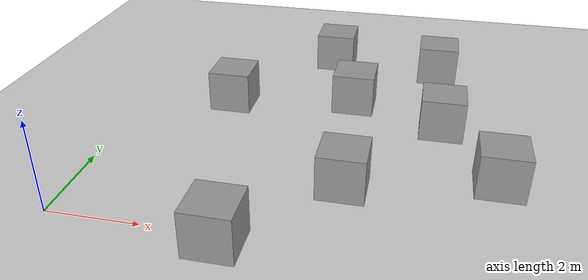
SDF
<sdf version="1.6">
 <world name="default">
  <light name="sun" type="directional">
   <pose>0 0 10 0 -0 0</pose>
   <diffuse>0.8 0.8 0.8 1</diffuse>
   <specular>0.2 0.2 0.2 1</specular>
   <attenuation>
    <range>1000</range>
    <constant>0.9</constant>
    <linear>0.01</linear>
    <quadratic>0.001</quadratic>
   </attenuation>
   <direction>-0.5 0.1 -0.9</direction>
  </light>
  <model name="ground_plane">
   <static>1</static>
   <link name="link">
    <collision name="collision">
     <geometry><plane><normal>0 0 1</normal><size>100 100</size></plane></geometry>
     <surface>
      <contact><collide_bitmask>65535</collide_bitmask></contact>
      <friction><ode><mu>100</mu><mu2>50</mu2></ode></friction>
     </surface>
    </collision>
    <visual name="visual">
     <cast_shadows>0</cast_shadows>
     <geometry><plane><normal>0 0 1</normal><size>100 100</size></plane></geometry>
     <material>
      <script><uri>file://media/materials/scripts/gazebo.material</uri><name>Gazebo/Grey</name></script>
     </material>
    </visual>
   </link>
  </model>
  <gravity>0 0 -9.8</gravity>
  <magnetic_field>6e-06 2.3e-05 -4.2e-05</magnetic_field>
  <atmosphere type="adiabatic"/>
  <physics name="default_physics" default="0" type="ode">
   <max_step_size>0.001</max_step_size>
   <real_time_factor>1</real_time_factor>
   <real_time_update_rate>1000</real_time_update_rate>
  </physics>
  <scene><ambient>0.4 0.4 0.4 1</ambient><background>0.7 0.7 0.7 1</background><shadows>1</shadows></scene>
  <audio><device>default</device></audio>
  <spherical_coordinates>
   <surface_model>EARTH_WGS84</surface_model>
   <latitude_deg>0</latitude_deg>
   <longitude_deg>0</longitude_deg>
   <elevation>0</elevation>
   <heading_deg>0</heading_deg>
  </spherical_coordinates>
  <model name="unit_box">
   <static>1</static>
   <pose>3.56536 -0.194885 0.499995 1e-05 -0 0</pose>
   <link name="link">
    <inertial>
     <mass>1</mass>
     <inertia>
      <ixx>0.166667</ixx>
      <ixy>0</ixy>
      <ixz>0</ixz>
      <iyy>0.166667</iyy>
      <iyz>0</iyz>
      <izz>0.166667</izz>
     </inertia>
    </inertial>
    <collision name="collision"><geometry><box><size>1 1 1</size></box></geometry></collision>
    <visual name="visual">
     <geometry><box><size>1 1 1</size></box></geometry>
     <material>
      <script><name>Gazebo/Grey</name><uri>file://media/materials/scripts/gazebo.material</uri></script>
     </material>
    </visual>
   </link>
  </model>
  <model name="unit_box_0">
   <static>1</static>
   <pose>5.53852 1.98215 0.499995 1e-05 -0 0</pose>
   <link name="link">
    <inertial>
     <mass>1</mass>
     <inertia>
      <ixx>0.166667</ixx>
      <ixy>0</ixy>
      <ixz>0</ixz>
      <iyy>0.166667</iyy>
      <iyz>0</iyz>
      <izz>0.166667</izz>
     </inertia>
    </inertial>
    <collision name="collision"><geometry><box><size>1 1 1</size></box></geometry></collision>
    <visual name="visual">
     <geometry><box><size>1 1 1</size></box></geometry>
     <material>
      <script><name>Gazebo/Grey</name><uri>file://media/materials/scripts/gazebo.material</uri></script>
     </material>
    </visual>
   </link>
  </model>
  <model name="unit_box_1">
   <static>1</static>
   <pose>5.28958 5.64466 0.499995 0 1e-05 0</pose>
   <link name="link">
    <inertial>
     <mass>1</mass>
     <inertia>
      <ixx>0.166667</ixx>
      <ixy>0</ixy>
      <ixz>0</ixz>
      <iyy>0.166667</iyy>
      <iyz>0</iyz>
      <izz>0.166667</izz>
     </inertia>
    </inertial>
    <collision name="collision"><geometry><box><size>1 1 1</size></box></geometry></collision>
    <visual name="visual">
     <geometry><box><size>1 1 1</size></box></geometry>
     <material>
      <script><name>Gazebo/Grey</name><uri>file://media/materials/scripts/gazebo.material</uri></script>
     </material>
    </visual>
   </link>
  </model>
  <model name="unit_box_2">
   <static>1</static>
   <pose>7.28597 7.82158 0.499995 1e-05 -0 0</pose>
   <link name="link">
    <inertial>
     <mass>1</mass>
     <inertia>
      <ixx>0.166667</ixx>
      <ixy>0</ixy>
      <ixz>0</ixz>
      <iyy>0.166667</iyy>
      <iyz>0</iyz>
      <izz>0.166667</izz>
     </inertia>
    </inertial>
    <collision name="collision"><geometry><box><size>1 1 1</size></box></geometry></collision>
    <visual name="visual">
     <geometry><box><size>1 1 1</size></box></geometry>
     <material>
      <script><name>Gazebo/Grey</name><uri>file://media/materials/scripts/gazebo.material</uri></script>
     </material>
    </visual>
   </link>
  </model>
  <model name="unit_box_3">
   <static>1</static>
   <pose>8.64335 2.70878 0.499995 0 1e-05 0</pose>
   <link name="link">
    <inertial>
     <mass>1</mass>
     <inertia>
      <ixx>0.166667</ixx>
      <ixy>0</ixy>
      <ixz>0</ixz>
      <iyy>0.166667</iyy>
      <iyz>0</iyz>
      <izz>0.166667</izz>
     </inertia>
    </inertial>
    <collision name="collision"><geometry><box><size>1 1 1</size></box></geometry></collision>
    <visual name="visual">
     <geometry><box><size>1 1 1</size></box></geometry>
     <material>
      <script><name>Gazebo/Grey</name><uri>file://media/materials/scripts/gazebo.material</uri></script>
     </material>
    </visual>
   </link>
  </model>
  <model name="unit_box_4">
   <static>1</static>
   <pose>2.29298 5.15008 0.499995 -1e-05 -0 -0</pose>
   <link name="link">
    <inertial>
     <mass>1</mass>
     <inertia>
      <ixx>0.166667</ixx>
      <ixy>0</ixy>
      <ixz>0</ixz>
      <iyy>0.166667</iyy>
      <iyz>0</iyz>
      <izz>0.166667</izz>
     </inertia>
    </inertial>
    <collision name="collision"><geometry><box><size>1 1 1</size></box></geometry></collision>
    <visual name="visual">
     <geometry><box><size>1 1 1</size></box></geometry>
     <material>
      <script><name>Gazebo/Grey</name><uri>file://media/materials/scripts/gazebo.material</uri></script>
     </material>
    </visual>
   </link>
  </model>
  <model name="unit_box_5">
   <static>1</static>
   <pose>7.45141 4.78627 0.499995 -1e-05 -0 0</pose>
   <link name="link">
    <inertial>
     <mass>1</mass>
     <inertia>
      <ixx>0.166667</ixx>
      <ixy>0</ixy>
      <ixz>0</ixz>
      <iyy>0.166667</iyy>
      <iyz>0</iyz>
      <izz>0.166667</izz>
     </inertia>
    </inertial>
    <collision name="collision"><geometry><box><size>1 1 1</size></box></geometry></collision>
    <visual name="visual">
     <geometry><box><size>1 1 1</size></box></geometry>
     <material>
      <script><name>Gazebo/Grey</name><uri>file://media/materials/scripts/gazebo.material</uri></script>
     </material>
    </visual>
   </link>
  </model>
  <model name="unit_box_6">
   <static>1</static>
   <pose>4.46534 8.15642 0.5 0 -0 0</pose>
   <link name="link">
    <inertial>
     <mass>1</mass>
     <inertia>
      <ixx>0.166667</ixx>
      <ixy>0</ixy>
      <ixz>0</ixz>
      <iyy>0.166667</iyy>
      <iyz>0</iyz>
      <izz>0.166667</izz>
     </inertia>
    </inertial>
    <collision name="collision"><geometry><box><size>1 1 1</size></box></geometry></collision>
    <visual name="visual">
     <geometry><box><size>1 1 1</size></box></geometry>
     <material>
      <script><name>Gazebo/Grey</name><uri>file://media/materials/scripts/gazebo.material</uri></script>
     </material>
    </visual>
   </link>
  </model>
 </world>
</sdf>
